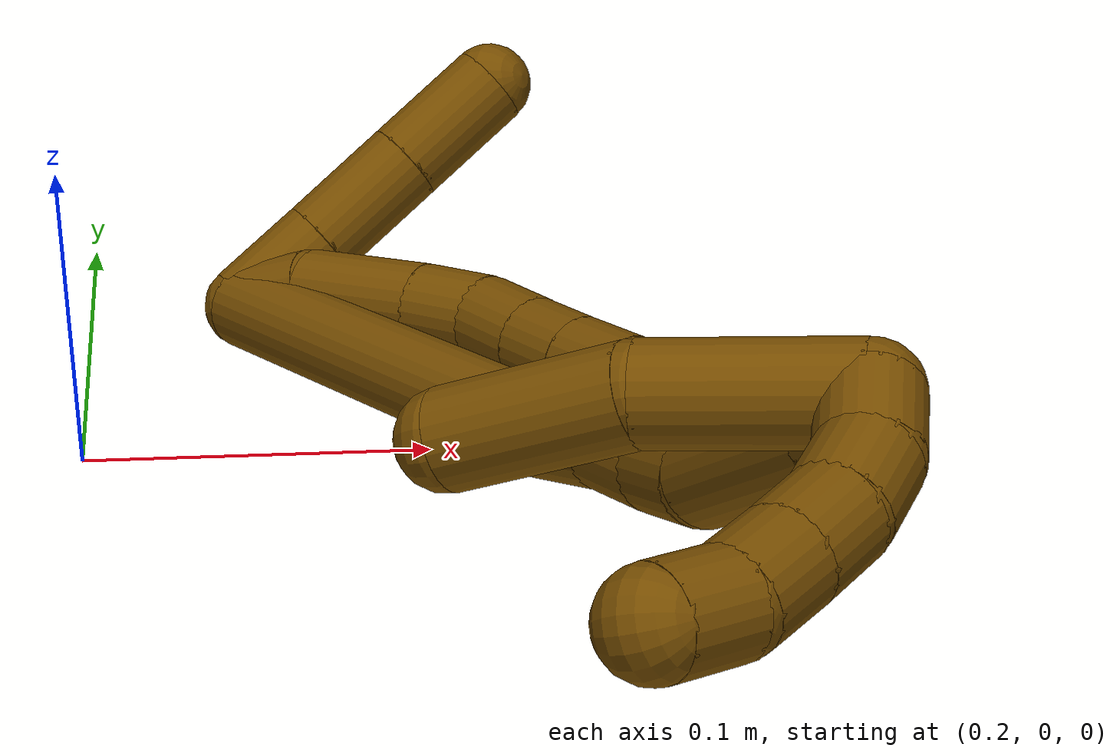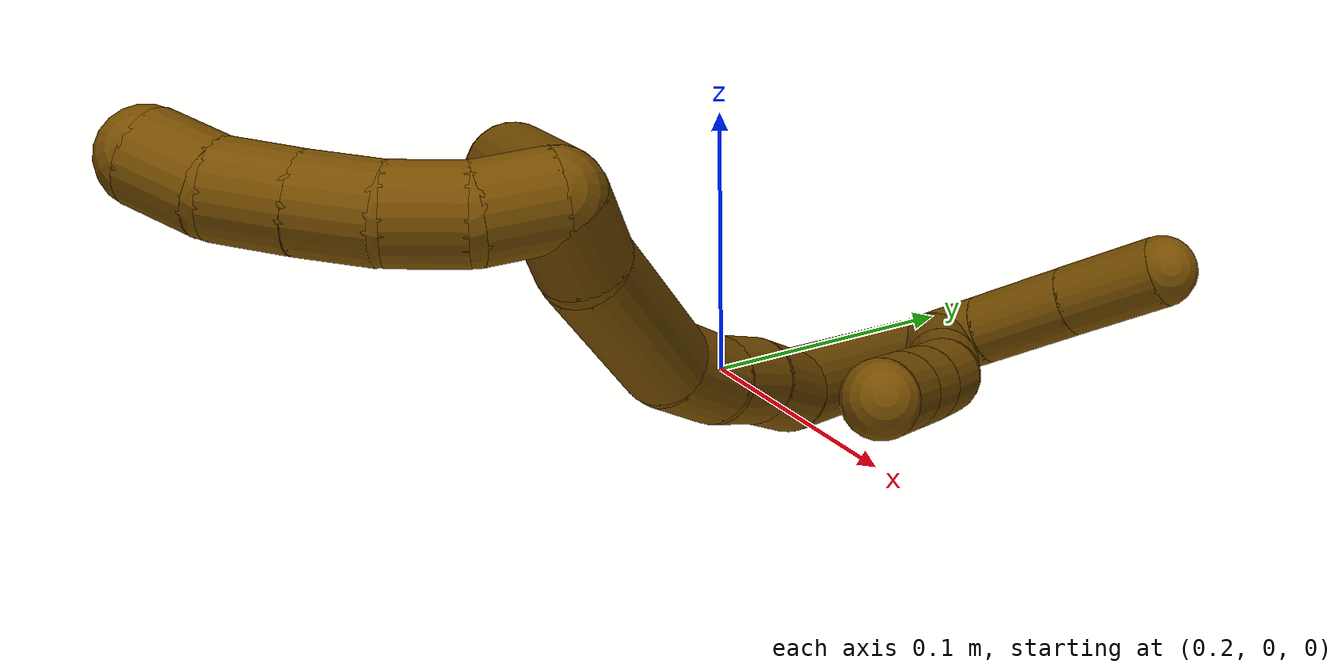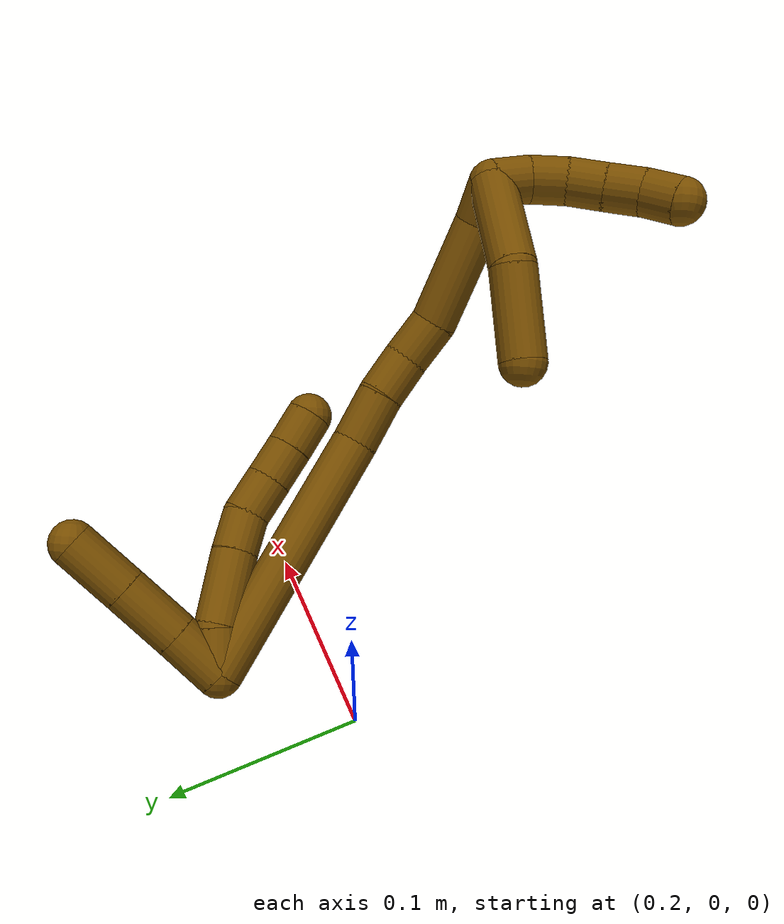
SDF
<sdf version="1.7">
 <world name="default">
  <model name="bin">
   <static>1</static>
   <link name="bottom">
    <collision name="collision-bottom">
     <pose>0 0 -0.01 0 -0 0</pose>
     <geometry><box><size>0.8 0.6 0.02</size></box></geometry>
     <surface>
      <friction><ode><mu>100</mu><mu2>100</mu2></ode></friction>
      <contact><collide_bitmask>65535</collide_bitmask></contact>
     </surface>
    </collision>
   </link>
   <link name="west_wall">
    <collision name="collision-west_wall">
     <pose>-0.41 0 0.1 0 -0 0</pose>
     <geometry><box><size>0.02 0.6 0.2</size></box></geometry>
     <surface>
      <friction><ode><mu>100</mu><mu2>100</mu2></ode></friction>
      <contact><collide_bitmask>65535</collide_bitmask></contact>
     </surface>
    </collision>
   </link>
   <link name="east_wall">
    <collision name="collision-east_wall">
     <pose>0.41 0 0.1 0 -0 0</pose>
     <geometry><box><size>0.02 0.6 0.2</size></box></geometry>
     <surface>
      <friction><ode><mu>100</mu><mu2>100</mu2></ode></friction>
      <contact><collide_bitmask>65535</collide_bitmask></contact>
     </surface>
    </collision>
   </link>
   <link name="south_wall">
    <collision name="collision-south_wall">
     <pose>0 -0.31 0.1 0 -0 0</pose>
     <geometry><box><size>0.8 0.02 0.2</size></box></geometry>
     <surface>
      <friction><ode><mu>100</mu><mu2>100</mu2></ode></friction>
      <contact><collide_bitmask>65535</collide_bitmask></contact>
     </surface>
    </collision>
   </link>
   <link name="north_wall">
    <collision name="collision-north_wall">
     <pose>0 0.31 0.1 0 -0 0</pose>
     <geometry><box><size>0.8 0.02 0.2</size></box></geometry>
     <surface>
      <friction><ode><mu>100</mu><mu2>100</mu2></ode></friction>
      <contact><collide_bitmask>65535</collide_bitmask></contact>
     </surface>
    </collision>
   </link>
  </model>
  <model name="12">
   <static>0</static>
   <link name="12">
    <collision name="collision-cylinder-e_1_2_8">
     <pose>-0.001549 0.000331 -0.011802 -3.11359 -0.13044 2.71918</pose>
     <geometry><cylinder><radius>0.0125</radius><length>0.023816</length></cylinder></geometry>
     <surface>
      <friction><ode><mu>1.16</mu><mu2>1.16</mu2><slip1>0</slip1><slip2>0</slip2></ode></friction>
      <contact><ode><kp>1e+06</kp><kd>1</kd><max_vel>0</max_vel><min_depth>0.001</min_depth></ode></contact>
     </surface>
    </collision>
    <visual name="visual-cylinder-e_1_2_8">
     <pose>-0.001549 0.000331 -0.011802 -3.11359 -0.13044 2.71918</pose>
     <geometry><cylinder><radius>0.0125</radius><length>0.023816</length></cylinder></geometry>
     <material><ambient>0.466667 0.301961 0 1</ambient></material>
    </visual>
    <collision name="collision-cylinder-e_2_8_9">
     <pose>-0.005731 -0.004635 -0.042674 2.87069 -0.132256 -0.904659</pose>
     <geometry><cylinder><radius>0.0125</radius><length>0.039931</length></cylinder></geometry>
     <surface>
      <friction><ode><mu>1.16</mu><mu2>1.16</mu2><slip1>0</slip1><slip2>0</slip2></ode></friction>
      <contact><ode><kp>1e+06</kp><kd>1</kd><max_vel>0</max_vel><min_depth>0.001</min_depth></ode></contact>
     </surface>
    </collision>
    <visual name="visual-cylinder-e_2_8_9">
     <pose>-0.005731 -0.004635 -0.042674 2.87069 -0.132256 -0.904659</pose>
     <geometry><cylinder><radius>0.0125</radius><length>0.039931</length></cylinder></geometry>
     <material><ambient>0.466667 0.301961 0 1</ambient></material>
    </visual>
    <collision name="collision-cylinder-e_3_9_10">
     <pose>-0.009392 -0.013417 -0.072053 2.81551 -0.094227 -0.558261</pose>
     <geometry><cylinder><radius>0.0125</radius><length>0.021862</length></cylinder></geometry>
     <surface>
      <friction><ode><mu>1.16</mu><mu2>1.16</mu2><slip1>0</slip1><slip2>0</slip2></ode></friction>
      <contact><ode><kp>1e+06</kp><kd>1</kd><max_vel>0</max_vel><min_depth>0.001</min_depth></ode></contact>
     </surface>
    </collision>
    <visual name="visual-cylinder-e_3_9_10">
     <pose>-0.009392 -0.013417 -0.072053 2.81551 -0.094227 -0.558261</pose>
     <geometry><cylinder><radius>0.0125</radius><length>0.021862</length></cylinder></geometry>
     <material><ambient>0.466667 0.301961 0 1</ambient></material>
    </visual>
    <collision name="collision-cylinder-e_4_10_11">
     <pose>-0.008723 -0.022255 -0.092059 2.63727 0.152081 0.57503</pose>
     <geometry><cylinder><radius>0.0125</radius><length>0.022411</length></cylinder></geometry>
     <surface>
      <friction><ode><mu>1.16</mu><mu2>1.16</mu2><slip1>0</slip1><slip2>0</slip2></ode></friction>
      <contact><ode><kp>1e+06</kp><kd>1</kd><max_vel>0</max_vel><min_depth>0.001</min_depth></ode></contact>
     </surface>
    </collision>
    <visual name="visual-cylinder-e_4_10_11">
     <pose>-0.008723 -0.022255 -0.092059 2.63727 0.152081 0.57503</pose>
     <geometry><cylinder><radius>0.0125</radius><length>0.022411</length></cylinder></geometry>
     <material><ambient>0.466667 0.301961 0 1</ambient></material>
    </visual>
    <collision name="collision-cylinder-e_5_11_12">
     <pose>-0.005211 -0.032362 -0.110785 2.6569 0.176003 0.685624</pose>
     <geometry><cylinder><radius>0.0125</radius><length>0.020728</length></cylinder></geometry>
     <surface>
      <friction><ode><mu>1.16</mu><mu2>1.16</mu2><slip1>0</slip1><slip2>0</slip2></ode></friction>
      <contact><ode><kp>1e+06</kp><kd>1</kd><max_vel>0</max_vel><min_depth>0.001</min_depth></ode></contact>
     </surface>
    </collision>
    <visual name="visual-cylinder-e_5_11_12">
     <pose>-0.005211 -0.032362 -0.110785 2.6569 0.176003 0.685624</pose>
     <geometry><cylinder><radius>0.0125</radius><length>0.020728</length></cylinder></geometry>
     <material><ambient>0.466667 0.301961 0 1</ambient></material>
    </visual>
    <collision name="collision-cylinder-e_6_12_6">
     <pose>-0.001688 -0.041845 -0.129174 2.67383 0.161434 0.654648</pose>
     <geometry><cylinder><radius>0.0125</radius><length>0.021251</length></cylinder></geometry>
     <surface>
      <friction><ode><mu>1.16</mu><mu2>1.16</mu2><slip1>0</slip1><slip2>0</slip2></ode></friction>
      <contact><ode><kp>1e+06</kp><kd>1</kd><max_vel>0</max_vel><min_depth>0.001</min_depth></ode></contact>
     </surface>
    </collision>
    <visual name="visual-cylinder-e_6_12_6">
     <pose>-0.001688 -0.041845 -0.129174 2.67383 0.161434 0.654648</pose>
     <geometry><cylinder><radius>0.0125</radius><length>0.021251</length></cylinder></geometry>
     <material><ambient>0.466667 0.301961 0 1</ambient></material>
    </visual>
    <collision name="collision-cylinder-e_1_2_13">
     <pose>-0.006027 0.009854 -0.009401 -2.33267 -0.416604 0.917312</pose>
     <geometry><cylinder><radius>0.0125</radius><length>0.029787</length></cylinder></geometry>
     <surface>
      <friction><ode><mu>1.16</mu><mu2>1.16</mu2><slip1>0</slip1><slip2>0</slip2></ode></friction>
      <contact><ode><kp>1e+06</kp><kd>1</kd><max_vel>0</max_vel><min_depth>0.001</min_depth></ode></contact>
     </surface>
    </collision>
    <visual name="visual-cylinder-e_1_2_13">
     <pose>-0.006027 0.009854 -0.009401 -2.33267 -0.416604 0.917312</pose>
     <geometry><cylinder><radius>0.0125</radius><length>0.029787</length></cylinder></geometry>
     <material><ambient>0.466667 0.301961 0 1</ambient></material>
    </visual>
    <collision name="collision-cylinder-e_2_13_14">
     <pose>-0.019153 0.031438 -0.029649 -2.31709 -0.418201 0.903544</pose>
     <geometry><cylinder><radius>0.0125</radius><length>0.034964</length></cylinder></geometry>
     <surface>
      <friction><ode><mu>1.16</mu><mu2>1.16</mu2><slip1>0</slip1><slip2>0</slip2></ode></friction>
      <contact><ode><kp>1e+06</kp><kd>1</kd><max_vel>0</max_vel><min_depth>0.001</min_depth></ode></contact>
     </surface>
    </collision>
    <visual name="visual-cylinder-e_2_13_14">
     <pose>-0.019153 0.031438 -0.029649 -2.31709 -0.418201 0.903544</pose>
     <geometry><cylinder><radius>0.0125</radius><length>0.034964</length></cylinder></geometry>
     <material><ambient>0.466667 0.301961 0 1</ambient></material>
    </visual>
    <collision name="collision-cylinder-e_3_14_5">
     <pose>-0.033517 0.055003 -0.051347 -2.31289 -0.424798 0.911753</pose>
     <geometry><cylinder><radius>0.0125</radius><length>0.035249</length></cylinder></geometry>
     <surface>
      <friction><ode><mu>1.16</mu><mu2>1.16</mu2><slip1>0</slip1><slip2>0</slip2></ode></friction>
      <contact><ode><kp>1e+06</kp><kd>1</kd><max_vel>0</max_vel><min_depth>0.001</min_depth></ode></contact>
     </surface>
    </collision>
    <visual name="visual-cylinder-e_3_14_5">
     <pose>-0.033517 0.055003 -0.051347 -2.31289 -0.424798 0.911753</pose>
     <geometry><cylinder><radius>0.0125</radius><length>0.035249</length></cylinder></geometry>
     <material><ambient>0.466667 0.301961 0 1</ambient></material>
    </visual>
    <collision name="collision-cylinder-e_1_2_15">
     <pose>0.01088 -0.03101 -0.062523 2.68117 0.154653 0.638568</pose>
     <geometry><cylinder><radius>0.0125</radius><length>0.141267</length></cylinder></geometry>
     <surface>
      <friction><ode><mu>1.16</mu><mu2>1.16</mu2><slip1>0</slip1><slip2>0</slip2></ode></friction>
      <contact><ode><kp>1e+06</kp><kd>1</kd><max_vel>0</max_vel><min_depth>0.001</min_depth></ode></contact>
     </surface>
    </collision>
    <visual name="visual-cylinder-e_1_2_15">
     <pose>0.01088 -0.03101 -0.062523 2.68117 0.154653 0.638568</pose>
     <geometry><cylinder><radius>0.0125</radius><length>0.141267</length></cylinder></geometry>
     <material><ambient>0.466667 0.301961 0 1</ambient></material>
    </visual>
    <collision name="collision-cylinder-e_2_15_16">
     <pose>0.026069 -0.066392 -0.138515 2.82772 0.295357 1.50907</pose>
     <geometry><cylinder><radius>0.0125</radius><length>0.029604</length></cylinder></geometry>
     <surface>
      <friction><ode><mu>1.16</mu><mu2>1.16</mu2><slip1>0</slip1><slip2>0</slip2></ode></friction>
      <contact><ode><kp>1e+06</kp><kd>1</kd><max_vel>0</max_vel><min_depth>0.001</min_depth></ode></contact>
     </surface>
    </collision>
    <visual name="visual-cylinder-e_2_15_16">
     <pose>0.026069 -0.066392 -0.138515 2.82772 0.295357 1.50907</pose>
     <geometry><cylinder><radius>0.0125</radius><length>0.029604</length></cylinder></geometry>
     <material><ambient>0.466667 0.301961 0 1</ambient></material>
    </visual>
    <collision name="collision-cylinder-e_3_16_17">
     <pose>0.033912 -0.075864 -0.16235 2.6844 0.296936 1.14266</pose>
     <geometry><cylinder><radius>0.0125</radius><length>0.024162</length></cylinder></geometry>
     <surface>
      <friction><ode><mu>1.16</mu><mu2>1.16</mu2><slip1>0</slip1><slip2>0</slip2></ode></friction>
      <contact><ode><kp>1e+06</kp><kd>1</kd><max_vel>0</max_vel><min_depth>0.001</min_depth></ode></contact>
     </surface>
    </collision>
    <visual name="visual-cylinder-e_3_16_17">
     <pose>0.033912 -0.075864 -0.16235 2.6844 0.296936 1.14266</pose>
     <geometry><cylinder><radius>0.0125</radius><length>0.024162</length></cylinder></geometry>
     <material><ambient>0.466667 0.301961 0 1</ambient></material>
    </visual>
    <collision name="collision-cylinder-e_4_17_18">
     <pose>0.043198 -0.085058 -0.182979 2.76204 0.479839 1.81028</pose>
     <geometry><cylinder><radius>0.0125</radius><length>0.024913</length></cylinder></geometry>
     <surface>
      <friction><ode><mu>1.16</mu><mu2>1.16</mu2><slip1>0</slip1><slip2>0</slip2></ode></friction>
      <contact><ode><kp>1e+06</kp><kd>1</kd><max_vel>0</max_vel><min_depth>0.001</min_depth></ode></contact>
     </surface>
    </collision>
    <visual name="visual-cylinder-e_4_17_18">
     <pose>0.043198 -0.085058 -0.182979 2.76204 0.479839 1.81028</pose>
     <geometry><cylinder><radius>0.0125</radius><length>0.024913</length></cylinder></geometry>
     <material><ambient>0.466667 0.301961 0 1</ambient></material>
    </visual>
    <collision name="collision-cylinder-e_5_18_19">
     <pose>0.062235 -0.090163 -0.218941 3.10227 0.476875 2.98014</pose>
     <geometry><cylinder><radius>0.0125</radius><length>0.057896</length></cylinder></geometry>
     <surface>
      <friction><ode><mu>1.16</mu><mu2>1.16</mu2><slip1>0</slip1><slip2>0</slip2></ode></friction>
      <contact><ode><kp>1e+06</kp><kd>1</kd><max_vel>0</max_vel><min_depth>0.001</min_depth></ode></contact>
     </surface>
    </collision>
    <visual name="visual-cylinder-e_5_18_19">
     <pose>0.062235 -0.090163 -0.218941 3.10227 0.476875 2.98014</pose>
     <geometry><cylinder><radius>0.0125</radius><length>0.057896</length></cylinder></geometry>
     <material><ambient>0.466667 0.301961 0 1</ambient></material>
    </visual>
    <collision name="collision-cylinder-e_6_19_1">
     <pose>0.081849 -0.089008 -0.253473 -2.90111 0.607737 -2.40604</pose>
     <geometry><cylinder><radius>0.0125</radius><length>0.022158</length></cylinder></geometry>
     <surface>
      <friction><ode><mu>1.16</mu><mu2>1.16</mu2><slip1>0</slip1><slip2>0</slip2></ode></friction>
      <contact><ode><kp>1e+06</kp><kd>1</kd><max_vel>0</max_vel><min_depth>0.001</min_depth></ode></contact>
     </surface>
    </collision>
    <visual name="visual-cylinder-e_6_19_1">
     <pose>0.081849 -0.089008 -0.253473 -2.90111 0.607737 -2.40604</pose>
     <geometry><cylinder><radius>0.0125</radius><length>0.022158</length></cylinder></geometry>
     <material><ambient>0.466667 0.301961 0 1</ambient></material>
    </visual>
    <collision name="collision-cylinder-e_1_1_20">
     <pose>0.098874 -0.085053 -0.238808 -0.075963 0.426186 -0.016444</pose>
     <geometry><cylinder><radius>0.0125</radius><length>0.051762</length></cylinder></geometry>
     <surface>
      <friction><ode><mu>1.16</mu><mu2>1.16</mu2><slip1>0</slip1><slip2>0</slip2></ode></friction>
      <contact><ode><kp>1e+06</kp><kd>1</kd><max_vel>0</max_vel><min_depth>0.001</min_depth></ode></contact>
     </surface>
    </collision>
    <visual name="visual-cylinder-e_1_1_20">
     <pose>0.098874 -0.085053 -0.238808 -0.075963 0.426186 -0.016444</pose>
     <geometry><cylinder><radius>0.0125</radius><length>0.051762</length></cylinder></geometry>
     <material><ambient>0.466667 0.301961 0 1</ambient></material>
    </visual>
    <collision name="collision-cylinder-e_2_20_4">
     <pose>0.113113 -0.085294 -0.191539 0.085167 0.147272 0.006286</pose>
     <geometry><cylinder><radius>0.0125</radius><length>0.048238</length></cylinder></geometry>
     <surface>
      <friction><ode><mu>1.16</mu><mu2>1.16</mu2><slip1>0</slip1><slip2>0</slip2></ode></friction>
      <contact><ode><kp>1e+06</kp><kd>1</kd><max_vel>0</max_vel><min_depth>0.001</min_depth></ode></contact>
     </surface>
    </collision>
    <visual name="visual-cylinder-e_2_20_4">
     <pose>0.113113 -0.085294 -0.191539 0.085167 0.147272 0.006286</pose>
     <geometry><cylinder><radius>0.0125</radius><length>0.048238</length></cylinder></geometry>
     <material><ambient>0.466667 0.301961 0 1</ambient></material>
    </visual>
    <collision name="collision-cylinder-e_1_1_21">
     <pose>0.093196 -0.095204 -0.26451 1.82852 0.526069 0.672364</pose>
     <geometry><cylinder><radius>0.0125</radius><length>0.02</length></cylinder></geometry>
     <surface>
      <friction><ode><mu>1.16</mu><mu2>1.16</mu2><slip1>0</slip1><slip2>0</slip2></ode></friction>
      <contact><ode><kp>1e+06</kp><kd>1</kd><max_vel>0</max_vel><min_depth>0.001</min_depth></ode></contact>
     </surface>
    </collision>
    <visual name="visual-cylinder-e_1_1_21">
     <pose>0.093196 -0.095204 -0.26451 1.82852 0.526069 0.672364</pose>
     <geometry><cylinder><radius>0.0125</radius><length>0.02</length></cylinder></geometry>
     <material><ambient>0.466667 0.301961 0 1</ambient></material>
    </visual>
    <collision name="collision-cylinder-e_2_21_22">
     <pose>0.105364 -0.110561 -0.266716 1.571 0.796059 0.796202</pose>
     <geometry><cylinder><radius>0.0125</radius><length>0.02</length></cylinder></geometry>
     <surface>
      <friction><ode><mu>1.16</mu><mu2>1.16</mu2><slip1>0</slip1><slip2>0</slip2></ode></friction>
      <contact><ode><kp>1e+06</kp><kd>1</kd><max_vel>0</max_vel><min_depth>0.001</min_depth></ode></contact>
     </surface>
    </collision>
    <visual name="visual-cylinder-e_2_21_22">
     <pose>0.105364 -0.110561 -0.266716 1.571 0.796059 0.796202</pose>
     <geometry><cylinder><radius>0.0125</radius><length>0.02</length></cylinder></geometry>
     <material><ambient>0.466667 0.301961 0 1</ambient></material>
    </visual>
    <collision name="collision-cylinder-e_3_22_23">
     <pose>0.120593 -0.12324 -0.265181 1.30684 0.941303 0.7429</pose>
     <geometry><cylinder><radius>0.0125</radius><length>0.02</length></cylinder></geometry>
     <surface>
      <friction><ode><mu>1.16</mu><mu2>1.16</mu2><slip1>0</slip1><slip2>0</slip2></ode></friction>
      <contact><ode><kp>1e+06</kp><kd>1</kd><max_vel>0</max_vel><min_depth>0.001</min_depth></ode></contact>
     </surface>
    </collision>
    <visual name="visual-cylinder-e_3_22_23">
     <pose>0.120593 -0.12324 -0.265181 1.30684 0.941303 0.7429</pose>
     <geometry><cylinder><radius>0.0125</radius><length>0.02</length></cylinder></geometry>
     <material><ambient>0.466667 0.301961 0 1</ambient></material>
    </visual>
    <collision name="collision-cylinder-e_4_23_24">
     <pose>0.136961 -0.134324 -0.262161 1.30251 0.976338 0.769192</pose>
     <geometry><cylinder><radius>0.0125</radius><length>0.02</length></cylinder></geometry>
     <surface>
      <friction><ode><mu>1.16</mu><mu2>1.16</mu2><slip1>0</slip1><slip2>0</slip2></ode></friction>
      <contact><ode><kp>1e+06</kp><kd>1</kd><max_vel>0</max_vel><min_depth>0.001</min_depth></ode></contact>
     </surface>
    </collision>
    <visual name="visual-cylinder-e_4_23_24">
     <pose>0.136961 -0.134324 -0.262161 1.30251 0.976338 0.769192</pose>
     <geometry><cylinder><radius>0.0125</radius><length>0.02</length></cylinder></geometry>
     <material><ambient>0.466667 0.301961 0 1</ambient></material>
    </visual>
    <collision name="collision-cylinder-e_5_24_3">
     <pose>0.154348 -0.142577 -0.257677 0.760384 1.14399 0.503639</pose>
     <geometry><cylinder><radius>0.0125</radius><length>0.02</length></cylinder></geometry>
     <surface>
      <friction><ode><mu>1.16</mu><mu2>1.16</mu2><slip1>0</slip1><slip2>0</slip2></ode></friction>
      <contact><ode><kp>1e+06</kp><kd>1</kd><max_vel>0</max_vel><min_depth>0.001</min_depth></ode></contact>
     </surface>
    </collision>
    <visual name="visual-cylinder-e_5_24_3">
     <pose>0.154348 -0.142577 -0.257677 0.760384 1.14399 0.503639</pose>
     <geometry><cylinder><radius>0.0125</radius><length>0.02</length></cylinder></geometry>
     <material><ambient>0.466667 0.301961 0 1</ambient></material>
    </visual>
    <collision name="collision-sphere-3">
     <pose>0.163451 -0.14543 -0.254677 0 -0 0</pose>
     <geometry><sphere><radius>0.0125</radius></sphere></geometry>
     <surface>
      <friction><ode><mu>1.16</mu><mu2>1.16</mu2><slip1>0</slip1><slip2>0</slip2></ode></friction>
      <contact><ode><kp>1e+06</kp><kd>1</kd><max_vel>0</max_vel><min_depth>0.001</min_depth></ode></contact>
     </surface>
    </collision>
    <visual name="visual-sphere-3">
     <pose>0.163451 -0.14543 -0.254677 0 -0 0</pose>
     <geometry><sphere><radius>0.0125</radius></sphere></geometry>
     <material><ambient>0.466667 0.301961 0 1</ambient></material>
    </visual>
    <collision name="collision-sphere-24">
     <pose>0.145245 -0.139724 -0.260676 0 -0 0</pose>
     <geometry><sphere><radius>0.0125</radius></sphere></geometry>
     <surface>
      <friction><ode><mu>1.16</mu><mu2>1.16</mu2><slip1>0</slip1><slip2>0</slip2></ode></friction>
      <contact><ode><kp>1e+06</kp><kd>1</kd><max_vel>0</max_vel><min_depth>0.001</min_depth></ode></contact>
     </surface>
    </collision>
    <visual name="visual-sphere-24">
     <pose>0.145245 -0.139724 -0.260676 0 -0 0</pose>
     <geometry><sphere><radius>0.0125</radius></sphere></geometry>
     <material><ambient>0.466667 0.301961 0 1</ambient></material>
    </visual>
    <collision name="collision-sphere-23">
     <pose>0.128676 -0.128923 -0.263645 0 -0 0</pose>
     <geometry><sphere><radius>0.0125</radius></sphere></geometry>
     <surface>
      <friction><ode><mu>1.16</mu><mu2>1.16</mu2><slip1>0</slip1><slip2>0</slip2></ode></friction>
      <contact><ode><kp>1e+06</kp><kd>1</kd><max_vel>0</max_vel><min_depth>0.001</min_depth></ode></contact>
     </surface>
    </collision>
    <visual name="visual-sphere-23">
     <pose>0.128676 -0.128923 -0.263645 0 -0 0</pose>
     <geometry><sphere><radius>0.0125</radius></sphere></geometry>
     <material><ambient>0.466667 0.301961 0 1</ambient></material>
    </visual>
    <collision name="collision-sphere-22">
     <pose>0.11251 -0.117557 -0.266717 0 -0 0</pose>
     <geometry><sphere><radius>0.0125</radius></sphere></geometry>
     <surface>
      <friction><ode><mu>1.16</mu><mu2>1.16</mu2><slip1>0</slip1><slip2>0</slip2></ode></friction>
      <contact><ode><kp>1e+06</kp><kd>1</kd><max_vel>0</max_vel><min_depth>0.001</min_depth></ode></contact>
     </surface>
    </collision>
    <visual name="visual-sphere-22">
     <pose>0.11251 -0.117557 -0.266717 0 -0 0</pose>
     <geometry><sphere><radius>0.0125</radius></sphere></geometry>
     <material><ambient>0.466667 0.301961 0 1</ambient></material>
    </visual>
    <collision name="collision-sphere-21">
     <pose>0.098218 -0.103566 -0.266714 0 -0 0</pose>
     <geometry><sphere><radius>0.0125</radius></sphere></geometry>
     <surface>
      <friction><ode><mu>1.16</mu><mu2>1.16</mu2><slip1>0</slip1><slip2>0</slip2></ode></friction>
      <contact><ode><kp>1e+06</kp><kd>1</kd><max_vel>0</max_vel><min_depth>0.001</min_depth></ode></contact>
     </surface>
    </collision>
    <visual name="visual-sphere-21">
     <pose>0.098218 -0.103566 -0.266714 0 -0 0</pose>
     <geometry><sphere><radius>0.0125</radius></sphere></geometry>
     <material><ambient>0.466667 0.301961 0 1</ambient></material>
    </visual>
    <collision name="collision-sphere-4">
     <pose>0.116652 -0.087324 -0.167767 0 -0 0</pose>
     <geometry><sphere><radius>0.0125</radius></sphere></geometry>
     <surface>
      <friction><ode><mu>1.16</mu><mu2>1.16</mu2><slip1>0</slip1><slip2>0</slip2></ode></friction>
      <contact><ode><kp>1e+06</kp><kd>1</kd><max_vel>0</max_vel><min_depth>0.001</min_depth></ode></contact>
     </surface>
    </collision>
    <visual name="visual-sphere-4">
     <pose>0.116652 -0.087324 -0.167767 0 -0 0</pose>
     <geometry><sphere><radius>0.0125</radius></sphere></geometry>
     <material><ambient>0.466667 0.301961 0 1</ambient></material>
    </visual>
    <collision name="collision-sphere-20">
     <pose>0.109573 -0.083265 -0.21531 0 -0 0</pose>
     <geometry><sphere><radius>0.0125</radius></sphere></geometry>
     <surface>
      <friction><ode><mu>1.16</mu><mu2>1.16</mu2><slip1>0</slip1><slip2>0</slip2></ode></friction>
      <contact><ode><kp>1e+06</kp><kd>1</kd><max_vel>0</max_vel><min_depth>0.001</min_depth></ode></contact>
     </surface>
    </collision>
    <visual name="visual-sphere-20">
     <pose>0.109573 -0.083265 -0.21531 0 -0 0</pose>
     <geometry><sphere><radius>0.0125</radius></sphere></geometry>
     <material><ambient>0.466667 0.301961 0 1</ambient></material>
    </visual>
    <collision name="collision-sphere-12">
     <pose>-0.003396 -0.037116 -0.119814 0 -0 0</pose>
     <geometry><sphere><radius>0.0125</radius></sphere></geometry>
     <surface>
      <friction><ode><mu>1.16</mu><mu2>1.16</mu2><slip1>0</slip1><slip2>0</slip2></ode></friction>
      <contact><ode><kp>1e+06</kp><kd>1</kd><max_vel>0</max_vel><min_depth>0.001</min_depth></ode></contact>
     </surface>
    </collision>
    <visual name="visual-sphere-12">
     <pose>-0.003396 -0.037116 -0.119814 0 -0 0</pose>
     <geometry><sphere><radius>0.0125</radius></sphere></geometry>
     <material><ambient>0.466667 0.301961 0 1</ambient></material>
    </visual>
    <collision name="collision-sphere-11">
     <pose>-0.007025 -0.027608 -0.101757 0 -0 0</pose>
     <geometry><sphere><radius>0.0125</radius></sphere></geometry>
     <surface>
      <friction><ode><mu>1.16</mu><mu2>1.16</mu2><slip1>0</slip1><slip2>0</slip2></ode></friction>
      <contact><ode><kp>1e+06</kp><kd>1</kd><max_vel>0</max_vel><min_depth>0.001</min_depth></ode></contact>
     </surface>
    </collision>
    <visual name="visual-sphere-11">
     <pose>-0.007025 -0.027608 -0.101757 0 -0 0</pose>
     <geometry><sphere><radius>0.0125</radius></sphere></geometry>
     <material><ambient>0.466667 0.301961 0 1</ambient></material>
    </visual>
    <collision name="collision-sphere-10">
     <pose>-0.010421 -0.016903 -0.082362 0 -0 0</pose>
     <geometry><sphere><radius>0.0125</radius></sphere></geometry>
     <surface>
      <friction><ode><mu>1.16</mu><mu2>1.16</mu2><slip1>0</slip1><slip2>0</slip2></ode></friction>
      <contact><ode><kp>1e+06</kp><kd>1</kd><max_vel>0</max_vel><min_depth>0.001</min_depth></ode></contact>
     </surface>
    </collision>
    <visual name="visual-sphere-10">
     <pose>-0.010421 -0.016903 -0.082362 0 -0 0</pose>
     <geometry><sphere><radius>0.0125</radius></sphere></geometry>
     <material><ambient>0.466667 0.301961 0 1</ambient></material>
    </visual>
    <collision name="collision-sphere-9">
     <pose>-0.008364 -0.009931 -0.061744 0 -0 0</pose>
     <geometry><sphere><radius>0.0125</radius></sphere></geometry>
     <surface>
      <friction><ode><mu>1.16</mu><mu2>1.16</mu2><slip1>0</slip1><slip2>0</slip2></ode></friction>
      <contact><ode><kp>1e+06</kp><kd>1</kd><max_vel>0</max_vel><min_depth>0.001</min_depth></ode></contact>
     </surface>
    </collision>
    <visual name="visual-sphere-9">
     <pose>-0.008364 -0.009931 -0.061744 0 -0 0</pose>
     <geometry><sphere><radius>0.0125</radius></sphere></geometry>
     <material><ambient>0.466667 0.301961 0 1</ambient></material>
    </visual>
    <collision name="collision-sphere-2">
     <geometry><sphere><radius>0.0125</radius></sphere></geometry>
     <surface>
      <friction><ode><mu>1.16</mu><mu2>1.16</mu2><slip1>0</slip1><slip2>0</slip2></ode></friction>
      <contact><ode><kp>1e+06</kp><kd>1</kd><max_vel>0</max_vel><min_depth>0.001</min_depth></ode></contact>
     </surface>
    </collision>
    <visual name="visual-sphere-2">
     <geometry><sphere><radius>0.0125</radius></sphere></geometry>
     <material><ambient>0.466667 0.301961 0 1</ambient></material>
    </visual>
    <collision name="collision-sphere-19">
     <pose>0.075522 -0.091174 -0.244639 0 -0 0</pose>
     <geometry><sphere><radius>0.0125</radius></sphere></geometry>
     <surface>
      <friction><ode><mu>1.16</mu><mu2>1.16</mu2><slip1>0</slip1><slip2>0</slip2></ode></friction>
      <contact><ode><kp>1e+06</kp><kd>1</kd><max_vel>0</max_vel><min_depth>0.001</min_depth></ode></contact>
     </surface>
    </collision>
    <visual name="visual-sphere-19">
     <pose>0.075522 -0.091174 -0.244639 0 -0 0</pose>
     <geometry><sphere><radius>0.0125</radius></sphere></geometry>
     <material><ambient>0.466667 0.301961 0 1</ambient></material>
    </visual>
    <collision name="collision-sphere-8">
     <pose>-0.003098 0.000661 -0.023604 0 -0 0</pose>
     <geometry><sphere><radius>0.0125</radius></sphere></geometry>
     <surface>
      <friction><ode><mu>1.16</mu><mu2>1.16</mu2><slip1>0</slip1><slip2>0</slip2></ode></friction>
      <contact><ode><kp>1e+06</kp><kd>1</kd><max_vel>0</max_vel><min_depth>0.001</min_depth></ode></contact>
     </surface>
    </collision>
    <visual name="visual-sphere-8">
     <pose>-0.003098 0.000661 -0.023604 0 -0 0</pose>
     <geometry><sphere><radius>0.0125</radius></sphere></geometry>
     <material><ambient>0.466667 0.301961 0 1</ambient></material>
    </visual>
    <collision name="collision-sphere-6">
     <pose>2e-05 -0.046574 -0.138535 0 -0 0</pose>
     <geometry><sphere><radius>0.0125</radius></sphere></geometry>
     <surface>
      <friction><ode><mu>1.16</mu><mu2>1.16</mu2><slip1>0</slip1><slip2>0</slip2></ode></friction>
      <contact><ode><kp>1e+06</kp><kd>1</kd><max_vel>0</max_vel><min_depth>0.001</min_depth></ode></contact>
     </surface>
    </collision>
    <visual name="visual-sphere-6">
     <pose>2e-05 -0.046574 -0.138535 0 -0 0</pose>
     <geometry><sphere><radius>0.0125</radius></sphere></geometry>
     <material><ambient>0.466667 0.301961 0 1</ambient></material>
    </visual>
    <collision name="collision-sphere-13">
     <pose>-0.012054 0.019709 -0.018803 0 -0 0</pose>
     <geometry><sphere><radius>0.0125</radius></sphere></geometry>
     <surface>
      <friction><ode><mu>1.16</mu><mu2>1.16</mu2><slip1>0</slip1><slip2>0</slip2></ode></friction>
      <contact><ode><kp>1e+06</kp><kd>1</kd><max_vel>0</max_vel><min_depth>0.001</min_depth></ode></contact>
     </surface>
    </collision>
    <visual name="visual-sphere-13">
     <pose>-0.012054 0.019709 -0.018803 0 -0 0</pose>
     <geometry><sphere><radius>0.0125</radius></sphere></geometry>
     <material><ambient>0.466667 0.301961 0 1</ambient></material>
    </visual>
    <collision name="collision-sphere-14">
     <pose>-0.026253 0.043168 -0.040495 0 -0 0</pose>
     <geometry><sphere><radius>0.0125</radius></sphere></geometry>
     <surface>
      <friction><ode><mu>1.16</mu><mu2>1.16</mu2><slip1>0</slip1><slip2>0</slip2></ode></friction>
      <contact><ode><kp>1e+06</kp><kd>1</kd><max_vel>0</max_vel><min_depth>0.001</min_depth></ode></contact>
     </surface>
    </collision>
    <visual name="visual-sphere-14">
     <pose>-0.026253 0.043168 -0.040495 0 -0 0</pose>
     <geometry><sphere><radius>0.0125</radius></sphere></geometry>
     <material><ambient>0.466667 0.301961 0 1</ambient></material>
    </visual>
    <collision name="collision-sphere-5">
     <pose>-0.04078 0.066839 -0.0622 0 -0 0</pose>
     <geometry><sphere><radius>0.0125</radius></sphere></geometry>
     <surface>
      <friction><ode><mu>1.16</mu><mu2>1.16</mu2><slip1>0</slip1><slip2>0</slip2></ode></friction>
      <contact><ode><kp>1e+06</kp><kd>1</kd><max_vel>0</max_vel><min_depth>0.001</min_depth></ode></contact>
     </surface>
    </collision>
    <visual name="visual-sphere-5">
     <pose>-0.04078 0.066839 -0.0622 0 -0 0</pose>
     <geometry><sphere><radius>0.0125</radius></sphere></geometry>
     <material><ambient>0.466667 0.301961 0 1</ambient></material>
    </visual>
    <collision name="collision-sphere-15">
     <pose>0.02176 -0.06202 -0.125045 0 -0 0</pose>
     <geometry><sphere><radius>0.0125</radius></sphere></geometry>
     <surface>
      <friction><ode><mu>1.16</mu><mu2>1.16</mu2><slip1>0</slip1><slip2>0</slip2></ode></friction>
      <contact><ode><kp>1e+06</kp><kd>1</kd><max_vel>0</max_vel><min_depth>0.001</min_depth></ode></contact>
     </surface>
    </collision>
    <visual name="visual-sphere-15">
     <pose>0.02176 -0.06202 -0.125045 0 -0 0</pose>
     <geometry><sphere><radius>0.0125</radius></sphere></geometry>
     <material><ambient>0.466667 0.301961 0 1</ambient></material>
    </visual>
    <collision name="collision-sphere-16">
     <pose>0.030378 -0.070764 -0.151984 0 -0 0</pose>
     <geometry><sphere><radius>0.0125</radius></sphere></geometry>
     <surface>
      <friction><ode><mu>1.16</mu><mu2>1.16</mu2><slip1>0</slip1><slip2>0</slip2></ode></friction>
      <contact><ode><kp>1e+06</kp><kd>1</kd><max_vel>0</max_vel><min_depth>0.001</min_depth></ode></contact>
     </surface>
    </collision>
    <visual name="visual-sphere-16">
     <pose>0.030378 -0.070764 -0.151984 0 -0 0</pose>
     <geometry><sphere><radius>0.0125</radius></sphere></geometry>
     <material><ambient>0.466667 0.301961 0 1</ambient></material>
    </visual>
    <collision name="collision-sphere-17">
     <pose>0.037447 -0.080964 -0.172716 0 -0 0</pose>
     <geometry><sphere><radius>0.0125</radius></sphere></geometry>
     <surface>
      <friction><ode><mu>1.16</mu><mu2>1.16</mu2><slip1>0</slip1><slip2>0</slip2></ode></friction>
      <contact><ode><kp>1e+06</kp><kd>1</kd><max_vel>0</max_vel><min_depth>0.001</min_depth></ode></contact>
     </surface>
    </collision>
    <visual name="visual-sphere-17">
     <pose>0.037447 -0.080964 -0.172716 0 -0 0</pose>
     <geometry><sphere><radius>0.0125</radius></sphere></geometry>
     <material><ambient>0.466667 0.301961 0 1</ambient></material>
    </visual>
    <collision name="collision-sphere-18">
     <pose>0.048948 -0.089152 -0.193243 0 -0 0</pose>
     <geometry><sphere><radius>0.0125</radius></sphere></geometry>
     <surface>
      <friction><ode><mu>1.16</mu><mu2>1.16</mu2><slip1>0</slip1><slip2>0</slip2></ode></friction>
      <contact><ode><kp>1e+06</kp><kd>1</kd><max_vel>0</max_vel><min_depth>0.001</min_depth></ode></contact>
     </surface>
    </collision>
    <visual name="visual-sphere-18">
     <pose>0.048948 -0.089152 -0.193243 0 -0 0</pose>
     <geometry><sphere><radius>0.0125</radius></sphere></geometry>
     <material><ambient>0.466667 0.301961 0 1</ambient></material>
    </visual>
    <collision name="collision-sphere-1">
     <pose>0.088175 -0.086841 -0.262306 0 -0 0</pose>
     <geometry><sphere><radius>0.0125</radius></sphere></geometry>
     <surface>
      <friction><ode><mu>1.16</mu><mu2>1.16</mu2><slip1>0</slip1><slip2>0</slip2></ode></friction>
      <contact><ode><kp>1e+06</kp><kd>1</kd><max_vel>0</max_vel><min_depth>0.001</min_depth></ode></contact>
     </surface>
    </collision>
    <visual name="visual-sphere-1">
     <pose>0.088175 -0.086841 -0.262306 0 -0 0</pose>
     <geometry><sphere><radius>0.0125</radius></sphere></geometry>
     <material><ambient>0.466667 0.301961 0 1</ambient></material>
    </visual>
    <inertial>
     <pose>0.039418 -0.049764 -0.135231 0 -0 0</pose>
     <mass>0.75</mass>
     <inertia><ixx>0.000388</ixx><ixy>0</ixy><ixz>0</ixz><iyy>2.7e-05</iyy><iyz>0</iyz><izz>2.4e-05</izz></inertia>
    </inertial>
   </link>
   <pose>0.247253 0.056215 0.011248 2.27407 -0.671239 -2.54297</pose>
  </model>
 </world>
</sdf>
